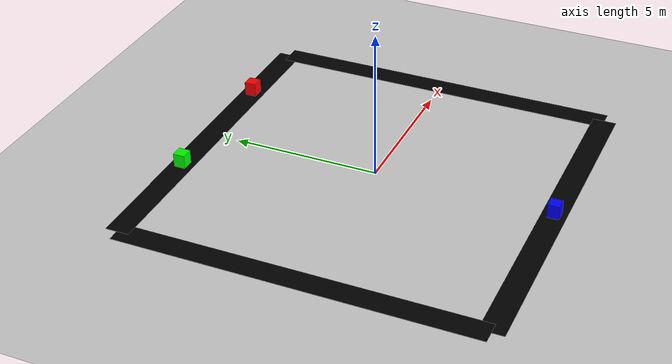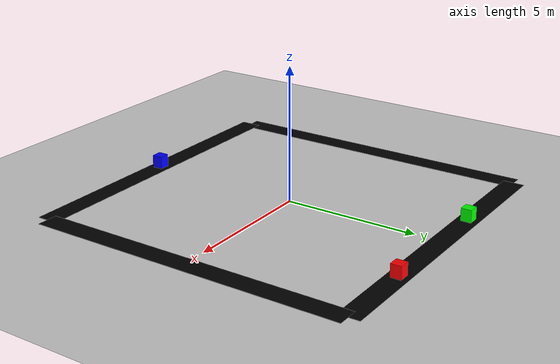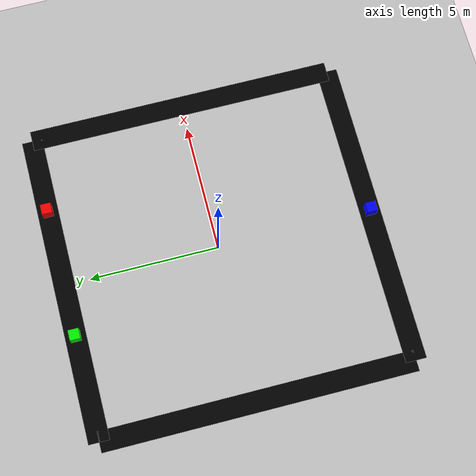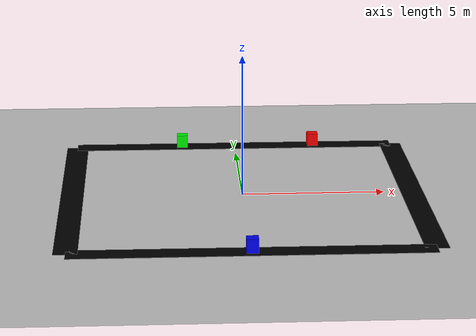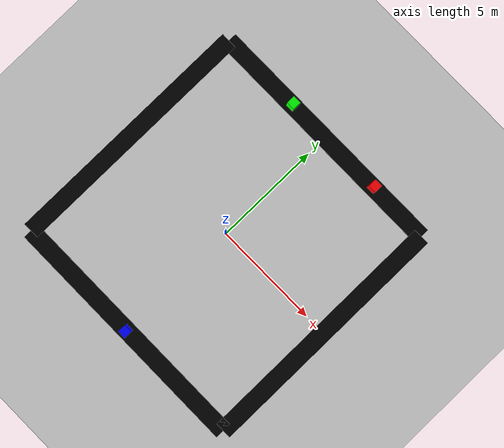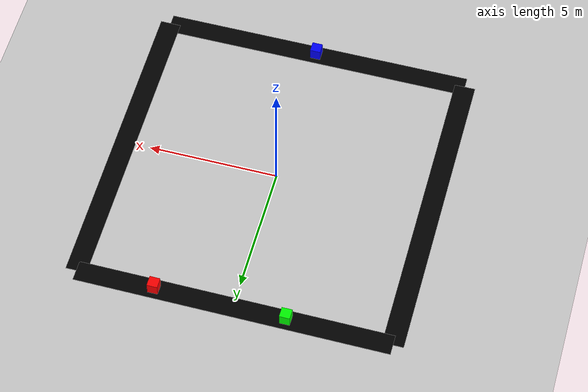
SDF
<?xml version="1.0" ?>
<sdf version="1.6">

<world name="continuous_track">

  <include>
    <uri>model://sun</uri>
  </include>

  <include>
    <uri>model://ground_plane</uri>
  </include>

  <!-- ================= TRACK ================= -->
  <model name="track">
    <static>true</static>
    <link name="link">

      <!-- TOP -->
      <collision name="top_collision">
        <pose>0 6 0.02 0 0 0</pose>
        <geometry>
          <box><size>12 0.8 0.01</size></box>
        </geometry>
      </collision>
      <visual name="top_visual">
        <pose>0 6 0.02 0 0 0</pose>
        <geometry>
          <box><size>12 0.8 0.01</size></box>
        </geometry>
        <material>
          <ambient>0 0 0 1</ambient>
          <diffuse>0 0 0 1</diffuse>
        </material>
      </visual>

      <!-- BOTTOM -->
      <collision name="bottom_collision">
        <pose>0 -6 0.02 0 0 0</pose>
        <geometry>
          <box><size>12 0.8 0.01</size></box>
        </geometry>
      </collision>
      <visual name="bottom_visual">
        <pose>0 -6 0.02 0 0 0</pose>
        <geometry>
          <box><size>12 0.8 0.01</size></box>
        </geometry>
        <material>
          <ambient>0 0 0 1</ambient>
          <diffuse>0 0 0 1</diffuse>
        </material>
      </visual>

      <!-- LEFT -->
      <collision name="left_collision">
        <pose>-6 0 0.02 0 0 1.57</pose>
        <geometry>
          <box><size>12 0.8 0.01</size></box>
        </geometry>
      </collision>
      <visual name="left_visual">
        <pose>-6 0 0.02 0 0 1.57</pose>
        <geometry>
          <box><size>12 0.8 0.01</size></box>
        </geometry>
        <material>
          <ambient>0 0 0 1</ambient>
          <diffuse>0 0 0 1</diffuse>
        </material>
      </visual>

      <!-- RIGHT -->
      <collision name="right_collision">
        <pose>6 0 0.02 0 0 1.57</pose>
        <geometry>
          <box><size>12 0.8 0.01</size></box>
        </geometry>
      </collision>
      <visual name="right_visual">
        <pose>6 0 0.02 0 0 1.57</pose>
        <geometry>
          <box><size>12 0.8 0.01</size></box>
        </geometry>
        <material>
          <ambient>0 0 0 1</ambient>
          <diffuse>0 0 0 1</diffuse>
        </material>
      </visual>

    </link>
  </model>

  <!-- ================= OBSTACLES ================= -->

  <model name="obs1">
    <static>true</static>
    <pose>3 6 0.25 0 0 0</pose>
    <link name="link">
      <collision name="c1">
        <geometry>
          <box><size>0.4 0.4 0.5</size></box>
        </geometry>
      </collision>
      <visual name="v1">
        <geometry>
          <box><size>0.4 0.4 0.5</size></box>
        </geometry>
        <material><ambient>1 0 0 1</ambient></material>
      </visual>
    </link>
  </model>

  <model name="obs2">
    <static>true</static>
    <pose>-2 6 0.25 0 0 0</pose>
    <link name="link">
      <collision name="c1">
        <geometry>
          <box><size>0.4 0.4 0.5</size></box>
        </geometry>
      </collision>
      <visual name="v1">
        <geometry>
          <box><size>0.4 0.4 0.5</size></box>
        </geometry>
        <material><ambient>0 1 0 1</ambient></material>
      </visual>
    </link>
  </model>

  <model name="obs3">
    <static>true</static>
    <pose>0 -6 0.25 0 0 0</pose>
    <link name="link">
      <collision name="c1">
        <geometry>
          <box><size>0.4 0.4 0.5</size></box>
        </geometry>
      </collision>
      <visual name="v1">
        <geometry>
          <box><size>0.4 0.4 0.5</size></box>
        </geometry>
        <material><ambient>0 0 1 1</ambient></material>
      </visual>
    </link>
  </model>

</world>

</sdf>
